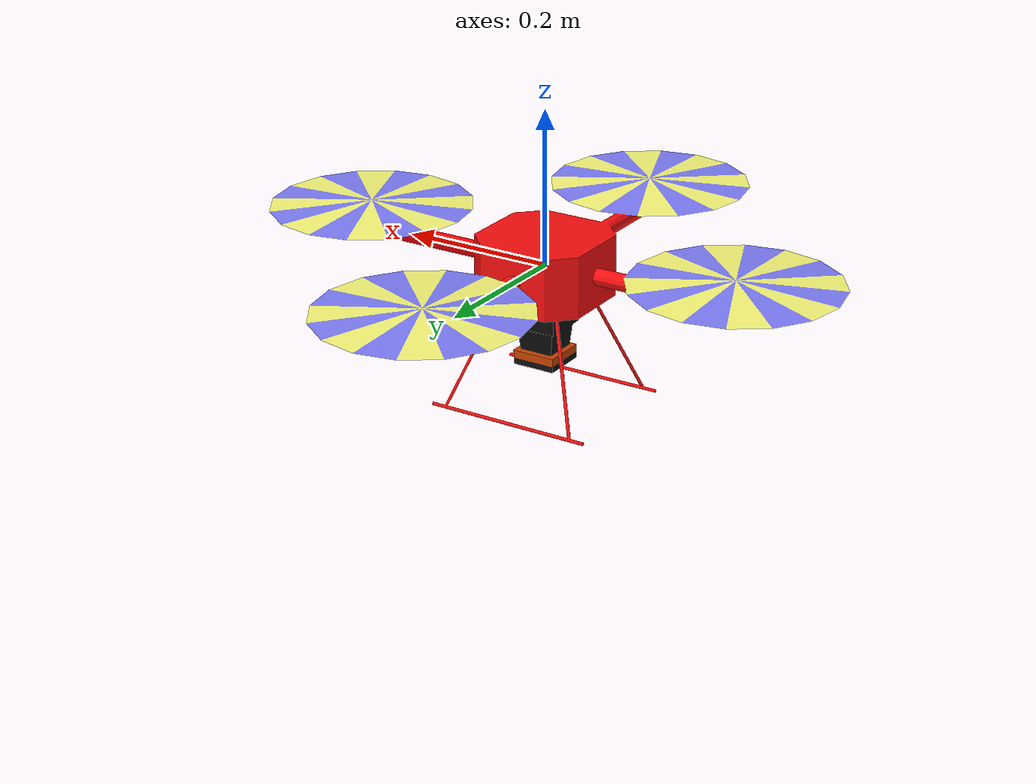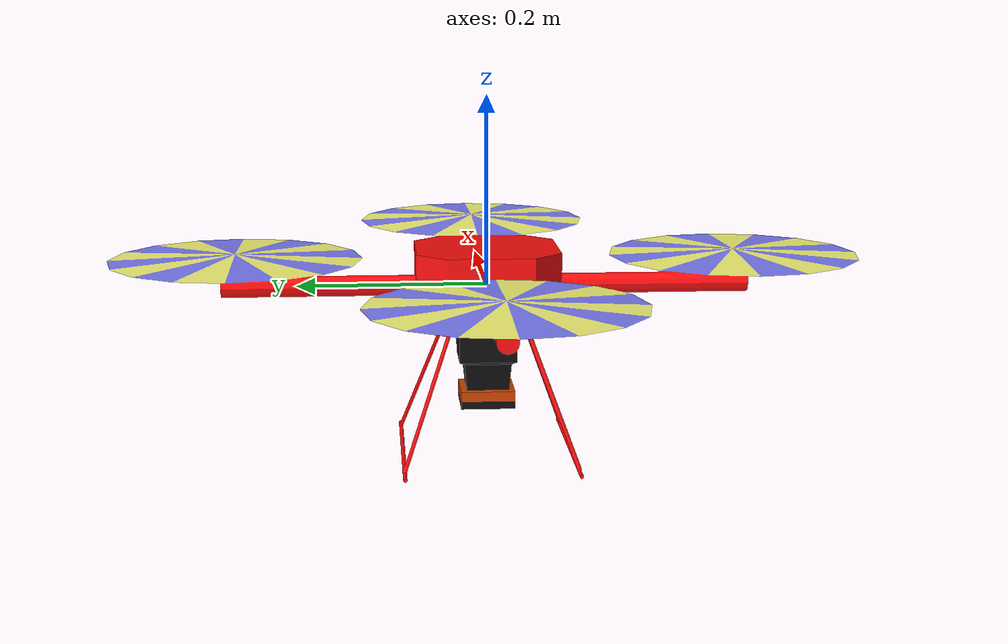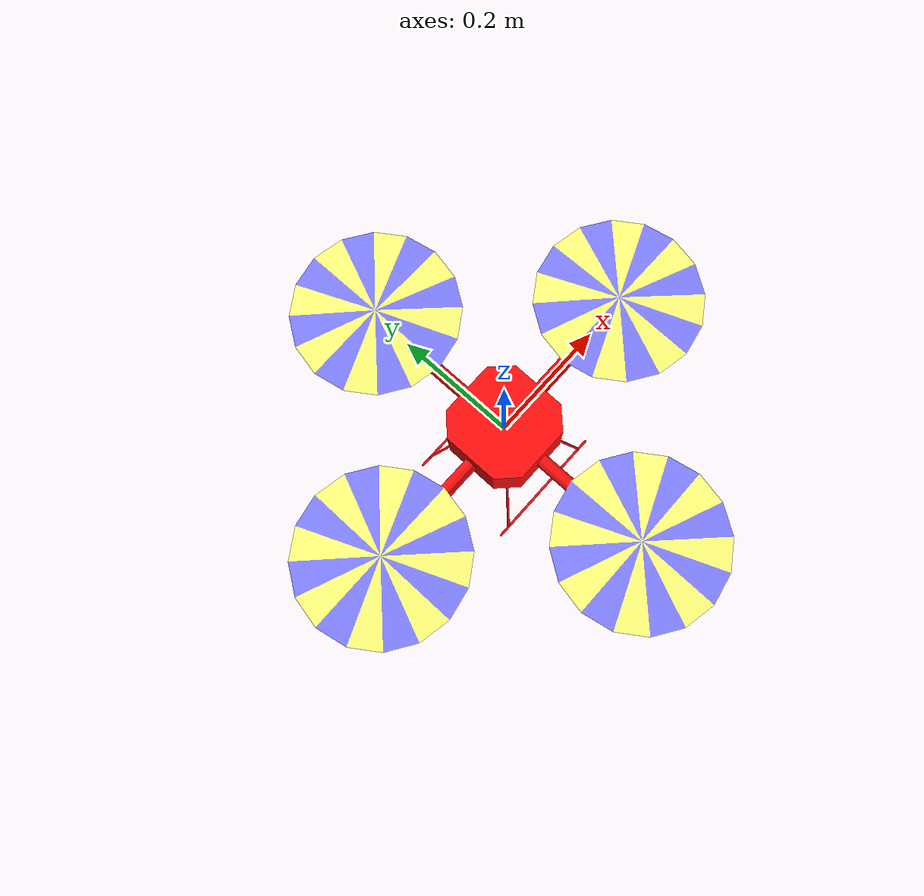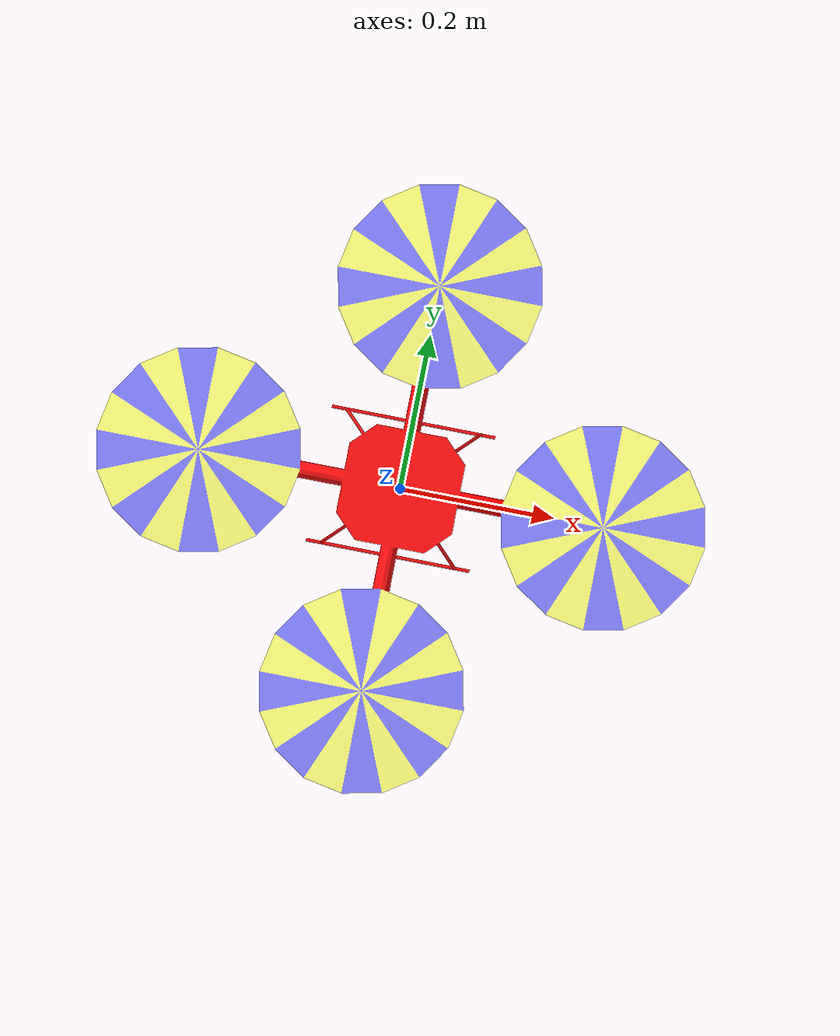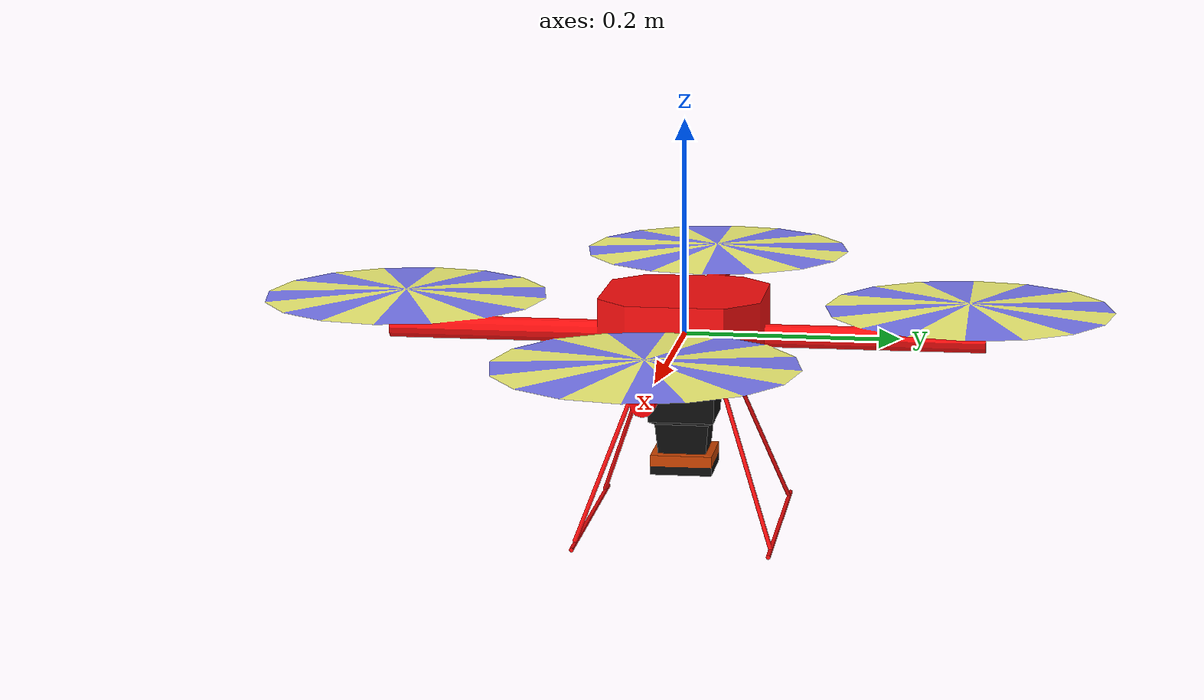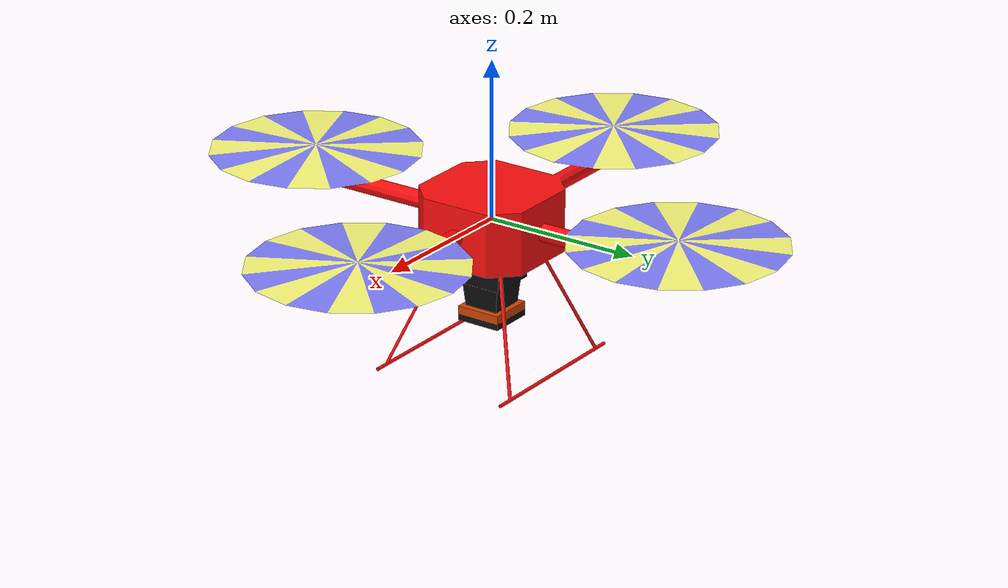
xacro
<?xml version="1.0"?>

<robot name="quadrotor" xmlns:xacro="http://www.ros.org/wiki/xacro">

    <xacro:property name="M_PI" value="3.1415926535897931" />

    <!-- Included URDF Files -->
    <xacro:include filename="$(find hector_quadrotor_description)/urdf/quadrotor_base.urdf.xacro" />

    <!-- Instantiate quadrotor_base_macro once (has no parameters atm) -->
    <xacro:quadrotor_base_macro />

    <!-- Hokuyo UTM-30LX mounted upside down below the quadrotor body -->
    <xacro:include filename="$(find hector_sensors_description)/urdf/hokuyo_utm30lx.urdf.xacro" />
    <xacro:hokuyo_utm30lx name="laser0" parent="base_link" ros_topic="scan" update_rate="40" ray_count="1081" min_angle="-135" max_angle="135">
      <origin xyz="0.0 0.0 -0.097" rpy="${M_PI} 0 0"/>
    </xacro:hokuyo_utm30lx>

    <!-- Forward facing camera -->
    <xacro:include filename="$(find hector_quadrotor_gazebo)/urdf/camTobi.xacro" />
    <xacro:include filename="$(find hector_quadrotor_gazebo)/urdf/gimbal.xacro" />

    <xacro:gimbal_macro name="front" parent="base_link">
      <origin xyz="0.15 0.0 -0.03" rpy="0 0 0"/>
    </xacro:gimbal_macro>

    <xacro:generic_camera name="front_cam" parent="front_gimbal_tilt_link" ros_topic="camera/image" cam_info_topic="camera/camera_info" update_rate="10" res_x="320" res_y="240" image_format="R8G8B8" hfov="90">
      <origin xyz="0.0 0.0 0.0" rpy="0 0 0"/>
    </xacro:generic_camera>

</robot>

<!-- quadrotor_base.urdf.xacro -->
<robot xmlns:xacro="http://www.ros.org/wiki/xacro">

  <xacro:property name="pi" value="3.1415926535897931" />

  <!-- Main quadrotor link -->
  <xacro:macro name="quadrotor_base_macro">
    <link name="base_link">
      <inertial>
        <mass value="1.477" />
        <origin xyz="0 0 0" />
        <inertia ixx="0.01152" ixy="0.0" ixz="0.0" iyy="0.01152" iyz="0.0" izz="0.0218" />
      </inertial>

      <visual>
        <origin xyz="0 0 0" rpy="0 0 0" />
        <geometry>
          <mesh filename="package://hector_quadrotor_description/meshes/quadrotor/quadrotor_base.dae"/>
        </geometry>
      </visual>

      <collision>
        <origin xyz="0 0 0" rpy="0 0 0" />
        <geometry>
          <mesh filename="package://hector_quadrotor_description/meshes/quadrotor/quadrotor_base.stl"/>
        </geometry>
      </collision>
    </link>

    <!-- Sonar height sensor -->

  </xacro:macro>
</robot>

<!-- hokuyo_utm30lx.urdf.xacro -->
<robot xmlns:xacro="http://ros.org/wiki/xacro">
    <xacro:property name="M_PI" value="3.1415926535897931" />

    <xacro:macro name="hokuyo_utm30lx_model" params="name parent *origin">
      <joint name="${name}_joint" type="fixed">
        <xacro:insert_block name="origin" />
        <parent link="${parent}"/>
        <child link="${name}_frame"/>
      </joint>

      <link name="${name}_frame">
        <inertial>
          <mass value="0.270" />
          <origin xyz="0 0 0" rpy="0 0 0" />
          <inertia ixx="2.632e-4" ixy="0" ixz="0" iyy="2.632e-4" iyz="0" izz="1.62e-4" />
        </inertial>
        <visual>
          <origin xyz="0 0 0" rpy="0 0 0" />
          <geometry>
          <mesh filename="package://hector_sensors_description/meshes/hokuyo_utm30lx/hokuyo_utm_30lx$(optenv TEST_SELF_FILTER).dae"/>
        </geometry>
        </visual>
        <collision>
          <origin xyz="0.00 0 0.0" rpy="0 ${0.5 * M_PI} 0" />
          <geometry>
	    <cylinder length="0.079" radius="0.0735"/>
        </geometry>
        </collision>
      </link>
    </xacro:macro>

    <xacro:macro name="hokuyo_utm30lx" params="name parent *origin ros_topic update_rate ray_count min_angle max_angle">
      <xacro:hokuyo_utm30lx_model name="${name}" parent="${parent}">
        <xacro:insert_block name="origin" />
      </xacro:hokuyo_utm30lx_model>

      <gazebo reference="${name}_frame">
        <sensor type="ray" name="${name}">
          <always_on>true</always_on>
          <update_rate>${update_rate}</update_rate>
          <pose>0 0 0 0 0 0</pose>
          <visualize>false</visualize>
          <ray>
            <scan>
              <horizontal>
                <samples>${ray_count}</samples>
                <resolution>1</resolution>
                <min_angle>${min_angle * M_PI/180}</min_angle>
                <max_angle>${max_angle * M_PI/180}</max_angle>
              </horizontal>
            </scan>
            <range>
              <min>0.2</min>
              <max>30.0</max>
              <resolution>0.01</resolution>
            </range>
            <noise>
              <type>gaussian</type>
              <mean>0.0</mean>
              <stddev>0.004</stddev>
            </noise>
          </ray>
          <plugin name="gazebo_ros_${name}_controller" filename="libgazebo_ros_laser.so">
            <gaussianNoise>0.005</gaussianNoise>
            <hokuyoMinIntensity>2000</hokuyoMinIntensity>
            <alwaysOn>true</alwaysOn>
	    <robotNamespace>$(arg robot_name)/sensor/</robotNamespace>
            <updateRate>${update_rate}</updateRate>
            <topicName>${ros_topic}</topicName>
            <frameName>${name}_frame</frameName>
          </plugin>
        </sensor>
      </gazebo>
    </xacro:macro>

    <xacro:macro name="hokuyo_utm30lx_gpu" params="name parent *origin ros_topic update_rate ray_count min_angle max_angle">
      <xacro:hokuyo_utm30lx_model name="${name}" parent="${parent}">
        <xacro:insert_block name="origin" />
      </xacro:hokuyo_utm30lx_model>

      <gazebo reference="${name}_frame">
        <sensor type="gpu_ray" name="${name}">
          <update_rate>${update_rate}</update_rate>
          <pose>0 0 0 0 0 0</pose>
          <visualize>false</visualize>
          <ray>
            <scan>
              <horizontal>
                <samples>${ray_count}</samples>
                <resolution>1</resolution>
                <min_angle>${min_angle * M_PI/180}</min_angle>
                <max_angle>${max_angle * M_PI/180}</max_angle>
              </horizontal>
            </scan>
            <range>
              <min>0.2</min>
              <max>30.0</max>
              <resolution>0.01</resolution>
            </range>
            <noise>
              <type>gaussian</type>
              <mean>0.0</mean>
              <stddev>0.004</stddev>
            </noise>
          </ray>
          <plugin name="gazebo_ros_${name}_controller" filename="libgazebo_ros_gpu_laser.so">
            <topicName>${ros_topic}</topicName>
            <frameName>${name}_frame</frameName>
          </plugin>
        </sensor>
      </gazebo>
    </xacro:macro>
</robot>

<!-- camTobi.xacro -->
<robot xmlns:xacro="http://www.ros.org/wiki/xacro">

  <xacro:property name="M_PI" value="3.1415926535897931" />

  <xacro:macro name="generic_camera" params="name parent *origin ros_topic cam_info_topic update_rate res_x res_y image_format hfov">
    <joint name="${name}_joint" type="fixed">
      <xacro:insert_block name="origin" />
      <parent link="${parent}"/>
      <child link="${name}_link"/>
    </joint>

    <link name="${name}_link">
      <inertial>
        <mass value="0.001" />
        <origin xyz="0 0 0" rpy="0 0 0" />
        <inertia ixx="0.0001" ixy="0" ixz="0" iyy="0.0001" iyz="0" izz="0.0001" />
      </inertial>
    </link>

    <joint name="${name}_optical_joint" type="fixed">
      <origin xyz="0 0 0" rpy="${-M_PI/2} 0.0 ${-M_PI/2}" />
      <parent link="${name}_link" />
      <child link="${name}_optical_frame"/>
    </joint>

    <link name="${name}_optical_frame"/>

    <gazebo reference="${name}_link">
      <sensor type="camera" name="${name}_camera_sensor">
        <update_rate>${update_rate}</update_rate>
        <camera>
          <horizontal_fov>${hfov * M_PI/180.0}</horizontal_fov>
          <image>
            <format>${image_format}</format>
            <width>${res_x}</width>
            <height>${res_y}</height>
          </image>
          <clip>
            <near>0.01</near>
            <far>100</far>
          </clip>
        </camera>

        <plugin name="${name}_camera_controller" filename="libgazebo_ros_camera.so">
          <cameraName>${name}</cameraName>
          <imageTopicName>${ros_topic}</imageTopicName>
          <cameraInfoTopicName>${cam_info_topic}</cameraInfoTopicName>
          <frameName>${name}_optical_frame</frameName>
        </plugin>
      </sensor>
    </gazebo>
  </xacro:macro>

</robot>

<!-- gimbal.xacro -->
<robot xmlns:xacro="http://www.ros.org/wiki/xacro">

  <xacro:property name="M_PI" value="1.57079632" />

  <xacro:include filename="$(find hector_xacro_tools)/urdf/inertia_tensors.urdf.xacro" />

  <xacro:macro name="gimbal_macro" params="parent name *origin">

    <joint name="${name}_gimbal_root_joint" type="fixed">
      <xacro:insert_block name="origin"/>
      <axis xyz="0 1 0"/>
      <parent link="${parent}"/>
      <child link="${name}_gimbal_root_link"/>
    </joint>

    <link name="${name}_gimbal_root_link">
      <xacro:inertial_sphere_with_pose mass="0.00001" diameter="0.03">
        <origin xyz="0.0 0.0 0.0" rpy="0 0 ${M_PI}"/>
      </xacro:inertial_sphere_with_pose>
    </link>

    <link name="${name}_gimbal_pan_link">
      <xacro:inertial_sphere_with_pose mass="0.00001" diameter="0.01">
        <origin xyz="0 0 0" rpy="0 0 0"/>
      </xacro:inertial_sphere_with_pose>
    </link>

    <joint name="${name}_gimbal_pan_joint" type="revolute" >

      <pose>0 0 0 0 0 0</pose>
      <axis xyz="0 0 1" />
      <parent link="${name}_gimbal_root_link"/>
      <child link="${name}_gimbal_pan_link"/>
      <limit effort="1" velocity="0.5" lower="-${M_PI}" upper="${M_PI}"/>
      <joint_properties damping="2.0" friction="2.0"/>
    </joint>

    <joint name="${name}_gimbal_roll_joint" type="revolute" >

      <pose>0 0 0 0 0 0</pose>
      <axis xyz="1 0 0" />
      <parent link="${name}_gimbal_pan_link"/>
      <child link="${name}_gimbal_roll_link"/>
      <limit effort="1" velocity="0.5" lower="-${M_PI}" upper="${M_PI}"/>
      <joint_properties damping="2.0" friction="2.0"/>
    </joint>

    <link name="${name}_gimbal_roll_link">
      <xacro:inertial_sphere_with_pose mass="0.00001" diameter="0.01">
        <origin xyz="0 0 0" rpy="0 0 0"/>
      </xacro:inertial_sphere_with_pose>
    </link>

    <link name="${name}_gimbal_tilt_link">
      <xacro:inertial_sphere_with_pose mass="0.00001" diameter="0.01">
        <origin xyz="0 0 0" rpy="0 0 0"/>
      </xacro:inertial_sphere_with_pose>
    </link>

    <joint name="${name}_gimbal_tilt_joint" type="revolute">
      <pose>0 0 0 0 0 0</pose>
      <axis xyz="0 1 0" />
      <parent link="${name}_gimbal_roll_link"/>
      <child link="${name}_gimbal_tilt_link"/>
      <limit effort="1" velocity="0.5" lower="-${M_PI}" upper="${M_PI}"/>
      <joint_properties damping="2.0" friction="2.0"/>
    </joint>

  </xacro:macro>

</robot>
